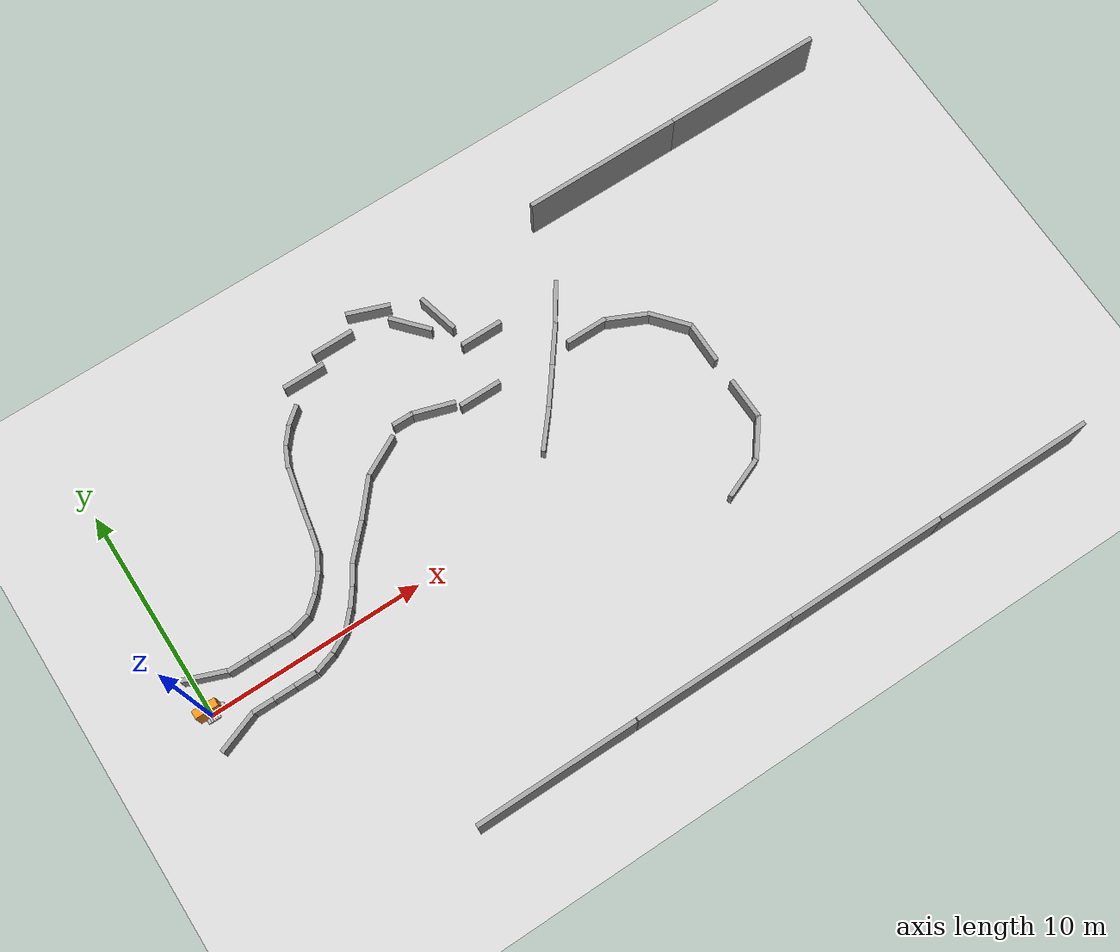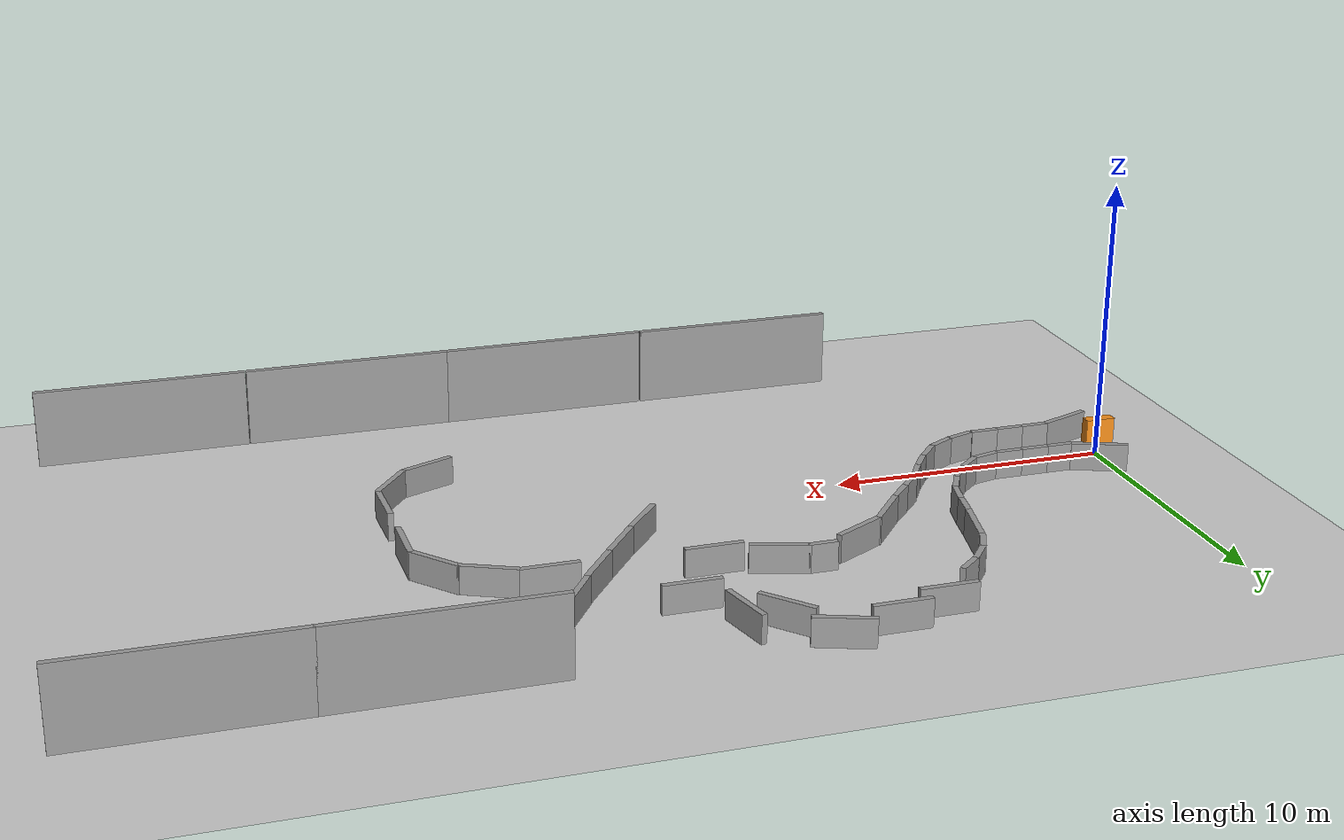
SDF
<sdf version="1.4">
 <world name="default">
  <light name="sun" type="directional">
   <pose>0 0 10 0 -0 0</pose>
   <diffuse>0.8 0.8 0.8 1</diffuse>
   <specular>0.2 0.2 0.2 1</specular>
   <attenuation>
    <range>1000</range>
    <constant>0.9</constant>
    <linear>0.01</linear>
    <quadratic>0.001</quadratic>
   </attenuation>
   <direction>-0.5 0.1 -0.9</direction>
  </light>
  <model name="ground_plane">
   <static>1</static>
   <link name="link">
    <collision name="collision">
     <geometry><plane><normal>0 0 1</normal><size>100 100</size></plane></geometry>
     <surface><friction><ode><mu>100</mu><mu2>50</mu2></ode></friction></surface>
    </collision>
    <visual name="visual">
     <cast_shadows>0</cast_shadows>
     <geometry><plane><normal>0 0 1</normal><size>100 100</size></plane></geometry>
     <material>
      <script><uri>file://media/materials/scripts/gazebo.material</uri><name>Gazebo/Grey</name></script>
     </material>
    </visual>
    <velocity_decay><linear>0</linear><angular>0</angular></velocity_decay>
   </link>
  </model>
  <physics type="ode">
   <max_step_size>0.001</max_step_size>
   <real_time_factor>1</real_time_factor>
   <real_time_update_rate>1000</real_time_update_rate>
   <gravity>0 0 -9.8</gravity>
  </physics>
  <scene><ambient>0.4 0.4 0.4 1</ambient><background>0.7 0.7 0.7 1</background><shadows>1</shadows></scene>
  <spherical_coordinates>
   <surface_model>EARTH_WGS84</surface_model>
   <latitude_deg>0</latitude_deg>
   <longitude_deg>0</longitude_deg>
   <elevation>0</elevation>
   <heading_deg>0</heading_deg>
  </spherical_coordinates>
  <model name="grey_wall">
   <static>1</static>
   <link name="link">
    <pose>0 0 0.5 0 -0 0</pose>
    <collision name="collision"><geometry><box><size>1 0.2 1</size></box></geometry></collision>
    <visual name="visual">
     <cast_shadows>0</cast_shadows>
     <geometry><box><size>1 0.2 1</size></box></geometry>
     <material>
      <script>
       <uri>model://grey_wall/materials/scripts</uri>
       <uri>model://grey_wall/materials/textures</uri>
       <name>vrc/grey_wall</name>
      </script>
     </material>
    </visual>
    <velocity_decay><linear>0</linear><angular>0</angular></velocity_decay>
   </link>
   <pose>2 1 0 0 -0 0</pose>
  </model>
  <model name="grey_wall_1">
   <static>1</static>
   <link name="link">
    <pose>0 0 0.5 0 -0 0</pose>
    <collision name="collision"><geometry><box><size>1 0.2 1</size></box></geometry></collision>
    <visual name="visual">
     <cast_shadows>0</cast_shadows>
     <geometry><box><size>1 0.2 1</size></box></geometry>
     <material>
      <script>
       <uri>model://grey_wall/materials/scripts</uri>
       <uri>model://grey_wall/materials/textures</uri>
       <name>vrc/grey_wall</name>
      </script>
     </material>
    </visual>
    <velocity_decay><linear>0</linear><angular>0</angular></velocity_decay>
   </link>
   <pose>2 -1 0 0 -0 0</pose>
  </model>
  <model name="grey_wall_2">
   <static>1</static>
   <link name="link">
    <pose>0 0 0.5 0 -0 0</pose>
    <collision name="collision"><geometry><box><size>1 0.2 1</size></box></geometry></collision>
    <visual name="visual">
     <cast_shadows>0</cast_shadows>
     <geometry><box><size>1 0.2 1</size></box></geometry>
     <material>
      <script>
       <uri>model://grey_wall/materials/scripts</uri>
       <uri>model://grey_wall/materials/textures</uri>
       <name>vrc/grey_wall</name>
      </script>
     </material>
    </visual>
    <velocity_decay><linear>0</linear><angular>0</angular></velocity_decay>
   </link>
   <pose>3 -1 0 0 -0 0</pose>
  </model>
  <model name="grey_wall_3">
   <static>1</static>
   <link name="link">
    <pose>0 0 0.5 0 -0 0</pose>
    <collision name="collision"><geometry><box><size>1 0.2 1</size></box></geometry></collision>
    <visual name="visual">
     <cast_shadows>0</cast_shadows>
     <geometry><box><size>1 0.2 1</size></box></geometry>
     <material>
      <script>
       <uri>model://grey_wall/materials/scripts</uri>
       <uri>model://grey_wall/materials/textures</uri>
       <name>vrc/grey_wall</name>
      </script>
     </material>
    </visual>
    <velocity_decay><linear>0</linear><angular>0</angular></velocity_decay>
   </link>
   <pose>3 1 0 0 -0 0</pose>
  </model>
  <model name="grey_wall_4">
   <static>1</static>
   <link name="link">
    <pose>0 0 0.5 0 -0 0</pose>
    <collision name="collision"><geometry><box><size>1 0.2 1</size></box></geometry></collision>
    <visual name="visual">
     <cast_shadows>0</cast_shadows>
     <geometry><box><size>1 0.2 1</size></box></geometry>
     <material>
      <script>
       <uri>model://grey_wall/materials/scripts</uri>
       <uri>model://grey_wall/materials/textures</uri>
       <name>vrc/grey_wall</name>
      </script>
     </material>
    </visual>
    <velocity_decay><linear>0</linear><angular>0</angular></velocity_decay>
   </link>
   <pose>4 -1 0 0 -0 0</pose>
  </model>
  <model name="grey_wall_5">
   <static>1</static>
   <link name="link">
    <pose>0 0 0.5 0 -0 0</pose>
    <collision name="collision"><geometry><box><size>1 0.2 1</size></box></geometry></collision>
    <visual name="visual">
     <cast_shadows>0</cast_shadows>
     <geometry><box><size>1 0.2 1</size></box></geometry>
     <material>
      <script>
       <uri>model://grey_wall/materials/scripts</uri>
       <uri>model://grey_wall/materials/textures</uri>
       <name>vrc/grey_wall</name>
      </script>
     </material>
    </visual>
    <velocity_decay><linear>0</linear><angular>0</angular></velocity_decay>
   </link>
   <pose>4 1 0 0 -0 0</pose>
  </model>
  <model name="grey_wall_6">
   <static>1</static>
   <link name="link">
    <pose>0 0 0.5 0 -0 0</pose>
    <collision name="collision"><geometry><box><size>1 0.2 1</size></box></geometry></collision>
    <visual name="visual">
     <cast_shadows>0</cast_shadows>
     <geometry><box><size>1 0.2 1</size></box></geometry>
     <material>
      <script>
       <uri>model://grey_wall/materials/scripts</uri>
       <uri>model://grey_wall/materials/textures</uri>
       <name>vrc/grey_wall</name>
      </script>
     </material>
    </visual>
    <velocity_decay><linear>0</linear><angular>0</angular></velocity_decay>
   </link>
   <pose>5.01734 -0.848768 0 0 -0 0.314202</pose>
  </model>
  <model name="grey_wall_7">
   <static>1</static>
   <link name="link">
    <pose>0 0 0.5 0 -0 0</pose>
    <collision name="collision"><geometry><box><size>1 0.2 1</size></box></geometry></collision>
    <visual name="visual">
     <cast_shadows>0</cast_shadows>
     <geometry><box><size>1 0.2 1</size></box></geometry>
     <material>
      <script>
       <uri>model://grey_wall/materials/scripts</uri>
       <uri>model://grey_wall/materials/textures</uri>
       <name>vrc/grey_wall</name>
      </script>
     </material>
    </visual>
    <velocity_decay><linear>0</linear><angular>0</angular></velocity_decay>
   </link>
   <pose>4.95446 1.11053 0 0 -0 0.247876</pose>
  </model>
  <model name="grey_wall_8">
   <static>1</static>
   <link name="link">
    <pose>0 0 0.5 0 -0 0</pose>
    <collision name="collision"><geometry><box><size>1 0.2 1</size></box></geometry></collision>
    <visual name="visual">
     <cast_shadows>0</cast_shadows>
     <geometry><box><size>1 0.2 1</size></box></geometry>
     <material>
      <script>
       <uri>model://grey_wall/materials/scripts</uri>
       <uri>model://grey_wall/materials/textures</uri>
       <name>vrc/grey_wall</name>
      </script>
     </material>
    </visual>
    <velocity_decay><linear>0</linear><angular>0</angular></velocity_decay>
   </link>
   <pose>5.94371 -0.455026 0 0 -0 0.490034</pose>
  </model>
  <model name="grey_wall_9">
   <static>1</static>
   <link name="link">
    <pose>0 0 0.5 0 -0 0</pose>
    <collision name="collision"><geometry><box><size>1 0.2 1</size></box></geometry></collision>
    <visual name="visual">
     <cast_shadows>0</cast_shadows>
     <geometry><box><size>1 0.2 1</size></box></geometry>
     <material>
      <script>
       <uri>model://grey_wall/materials/scripts</uri>
       <uri>model://grey_wall/materials/textures</uri>
       <name>vrc/grey_wall</name>
      </script>
     </material>
    </visual>
    <velocity_decay><linear>0</linear><angular>0</angular></velocity_decay>
   </link>
   <pose>5.78683 1.528 0 0 -0 0.704091</pose>
  </model>
  <model name="grey_wall_10">
   <static>1</static>
   <link name="link">
    <pose>0 0 0.5 0 -0 0</pose>
    <collision name="collision"><geometry><box><size>1 0.2 1</size></box></geometry></collision>
    <visual name="visual">
     <cast_shadows>0</cast_shadows>
     <geometry><box><size>1 0.2 1</size></box></geometry>
     <material>
      <script>
       <uri>model://grey_wall/materials/scripts</uri>
       <uri>model://grey_wall/materials/textures</uri>
       <name>vrc/grey_wall</name>
      </script>
     </material>
    </visual>
    <velocity_decay><linear>0</linear><angular>0</angular></velocity_decay>
   </link>
   <pose>6.71659 0.147546 0 0 -0 0.835488</pose>
  </model>
  <model name="grey_wall_11">
   <static>1</static>
   <link name="link">
    <pose>0 0 0.5 0 -0 0</pose>
    <collision name="collision"><geometry><box><size>1 0.2 1</size></box></geometry></collision>
    <visual name="visual">
     <cast_shadows>0</cast_shadows>
     <geometry><box><size>1 0.2 1</size></box></geometry>
     <material>
      <script>
       <uri>model://grey_wall/materials/scripts</uri>
       <uri>model://grey_wall/materials/textures</uri>
       <name>vrc/grey_wall</name>
      </script>
     </material>
    </visual>
    <velocity_decay><linear>0</linear><angular>0</angular></velocity_decay>
   </link>
   <pose>6.44136 2.2078 0 0 -0 0.880043</pose>
  </model>
  <model name="grey_wall_0">
   <static>1</static>
   <link name="link">
    <pose>0 0 0.5 0 -0 0</pose>
    <collision name="collision"><geometry><box><size>1 0.2 1</size></box></geometry></collision>
    <visual name="visual">
     <cast_shadows>0</cast_shadows>
     <geometry><box><size>1 0.2 1</size></box></geometry>
     <material>
      <script>
       <uri>model://grey_wall/materials/scripts</uri>
       <uri>model://grey_wall/materials/textures</uri>
       <name>vrc/grey_wall</name>
      </script>
     </material>
    </visual>
    <velocity_decay><linear>0</linear><angular>0</angular></velocity_decay>
   </link>
   <pose>7.33347 0.891377 0 0 -0 0.944963</pose>
  </model>
  <model name="grey_wall_12">
   <static>1</static>
   <link name="link">
    <pose>0 0 0.5 0 -0 0</pose>
    <collision name="collision"><geometry><box><size>1 0.2 1</size></box></geometry></collision>
    <visual name="visual">
     <cast_shadows>0</cast_shadows>
     <geometry><box><size>1 0.2 1</size></box></geometry>
     <material>
      <script>
       <uri>model://grey_wall/materials/scripts</uri>
       <uri>model://grey_wall/materials/textures</uri>
       <name>vrc/grey_wall</name>
      </script>
     </material>
    </visual>
    <velocity_decay><linear>0</linear><angular>0</angular></velocity_decay>
   </link>
   <pose>6.93852 2.95464 0 0 -0 1.07819</pose>
  </model>
  <model name="grey_wall_13">
   <static>1</static>
   <link name="link">
    <pose>0 0 0.5 0 -0 0</pose>
    <collision name="collision"><geometry><box><size>1 0.2 1</size></box></geometry></collision>
    <visual name="visual">
     <cast_shadows>0</cast_shadows>
     <geometry><box><size>1 0.2 1</size></box></geometry>
     <material>
      <script>
       <uri>model://grey_wall/materials/scripts</uri>
       <uri>model://grey_wall/materials/textures</uri>
       <name>vrc/grey_wall</name>
      </script>
     </material>
    </visual>
    <velocity_decay><linear>0</linear><angular>0</angular></velocity_decay>
   </link>
   <pose>7.86044 1.67629 0 0 -0 1.01143</pose>
  </model>
  <model name="grey_wall_14">
   <static>1</static>
   <link name="link">
    <pose>0 0 0.5 0 -0 0</pose>
    <collision name="collision"><geometry><box><size>1 0.2 1</size></box></geometry></collision>
    <visual name="visual">
     <cast_shadows>0</cast_shadows>
     <geometry><box><size>1 0.2 1</size></box></geometry>
     <material>
      <script>
       <uri>model://grey_wall/materials/scripts</uri>
       <uri>model://grey_wall/materials/textures</uri>
       <name>vrc/grey_wall</name>
      </script>
     </material>
    </visual>
    <velocity_decay><linear>0</linear><angular>0</angular></velocity_decay>
   </link>
   <pose>8.43573 2.44586 0 0 -0 0.825692</pose>
  </model>
  <model name="grey_wall_15">
   <static>1</static>
   <link name="link">
    <pose>0 0 0.5 0 -0 0</pose>
    <collision name="collision"><geometry><box><size>1 0.2 1</size></box></geometry></collision>
    <visual name="visual">
     <cast_shadows>0</cast_shadows>
     <geometry><box><size>1 0.2 1</size></box></geometry>
     <material>
      <script>
       <uri>model://grey_wall/materials/scripts</uri>
       <uri>model://grey_wall/materials/textures</uri>
       <name>vrc/grey_wall</name>
      </script>
     </material>
    </visual>
    <velocity_decay><linear>0</linear><angular>0</angular></velocity_decay>
   </link>
   <pose>7.287 3.81575 0 0 -0 1.34265</pose>
  </model>
  <model name="grey_wall_16">
   <static>1</static>
   <link name="link">
    <pose>0 0 0.5 0 -0 0</pose>
    <collision name="collision"><geometry><box><size>1 0.2 1</size></box></geometry></collision>
    <visual name="visual">
     <cast_shadows>0</cast_shadows>
     <geometry><box><size>1 0.2 1</size></box></geometry>
     <material>
      <script>
       <uri>model://grey_wall/materials/scripts</uri>
       <uri>model://grey_wall/materials/textures</uri>
       <name>vrc/grey_wall</name>
      </script>
     </material>
    </visual>
    <velocity_decay><linear>0</linear><angular>0</angular></velocity_decay>
   </link>
   <pose>9.09227 3.15251 0 0 -0 0.813159</pose>
  </model>
  <model name="grey_wall_17">
   <static>1</static>
   <link name="link">
    <pose>0 0 0.5 0 -0 0</pose>
    <collision name="collision"><geometry><box><size>1 0.2 1</size></box></geometry></collision>
    <visual name="visual">
     <cast_shadows>0</cast_shadows>
     <geometry><box><size>1 0.2 1</size></box></geometry>
     <material>
      <script>
       <uri>model://grey_wall/materials/scripts</uri>
       <uri>model://grey_wall/materials/textures</uri>
       <name>vrc/grey_wall</name>
      </script>
     </material>
    </visual>
    <velocity_decay><linear>0</linear><angular>0</angular></velocity_decay>
   </link>
   <pose>7.48265 4.75193 0 0 -0 1.38405</pose>
  </model>
  <model name="grey_wall_18">
   <static>1</static>
   <link name="link">
    <pose>0 0 0.5 0 -0 0</pose>
    <collision name="collision"><geometry><box><size>1 0.2 1</size></box></geometry></collision>
    <visual name="visual">
     <cast_shadows>0</cast_shadows>
     <geometry><box><size>2 0.2 1</size></box></geometry>
     <material>
      <script>
       <uri>model://grey_wall/materials/scripts</uri>
       <uri>model://grey_wall/materials/textures</uri>
       <name>vrc/grey_wall</name>
      </script>
     </material>
    </visual>
    <velocity_decay><linear>0</linear><angular>0</angular></velocity_decay>
   </link>
   <pose>10.0402 4.23818 0 0 -0 0.873095</pose>
  </model>
  <model name="grey_wall_19">
   <static>1</static>
   <link name="link">
    <pose>0 0 0.5 0 -0 0</pose>
    <collision name="collision"><geometry><box><size>1 0.2 1</size></box></geometry></collision>
    <visual name="visual">
     <cast_shadows>0</cast_shadows>
     <geometry><box><size>2 0.2 1</size></box></geometry>
     <material>
      <script>
       <uri>model://grey_wall/materials/scripts</uri>
       <uri>model://grey_wall/materials/textures</uri>
       <name>vrc/grey_wall</name>
      </script>
     </material>
    </visual>
    <velocity_decay><linear>0</linear><angular>0</angular></velocity_decay>
   </link>
   <pose>7.78888 6.19975 0 0 -0 1.3546</pose>
  </model>
  <model name="grey_wall_20">
   <static>1</static>
   <link name="link">
    <pose>0 0 0.5 0 -0 0</pose>
    <collision name="collision"><geometry><box><size>1 0.2 1</size></box></geometry></collision>
    <visual name="visual">
     <cast_shadows>0</cast_shadows>
     <geometry><box><size>1 0.2 1</size></box></geometry>
     <material>
      <script>
       <uri>model://grey_wall/materials/scripts</uri>
       <uri>model://grey_wall/materials/textures</uri>
       <name>vrc/grey_wall</name>
      </script>
     </material>
    </visual>
    <velocity_decay><linear>0</linear><angular>0</angular></velocity_decay>
   </link>
   <pose>8.17724 7.60588 0 0 -0 1.15349</pose>
  </model>
  <model name="grey_wall_21">
   <static>1</static>
   <link name="link">
    <pose>0 0 0.5 0 -0 0</pose>
    <collision name="collision"><geometry><box><size>1 0.2 1</size></box></geometry></collision>
    <visual name="visual">
     <cast_shadows>0</cast_shadows>
     <geometry><box><size>1 0.2 1</size></box></geometry>
     <material>
      <script>
       <uri>model://grey_wall/materials/scripts</uri>
       <uri>model://grey_wall/materials/textures</uri>
       <name>vrc/grey_wall</name>
      </script>
     </material>
    </visual>
    <velocity_decay><linear>0</linear><angular>0</angular></velocity_decay>
   </link>
   <pose>8.66935 8.39932 0 0 -0 0.889007</pose>
  </model>
  <model name="grey_wall_22">
   <static>1</static>
   <link name="link">
    <pose>0 0 0.5 0 -0 0</pose>
    <collision name="collision"><geometry><box><size>1 0.2 1</size></box></geometry></collision>
    <visual name="visual">
     <cast_shadows>0</cast_shadows>
     <geometry><box><size>1 0.2 1</size></box></geometry>
     <material>
      <script>
       <uri>model://grey_wall/materials/scripts</uri>
       <uri>model://grey_wall/materials/textures</uri>
       <name>vrc/grey_wall</name>
      </script>
     </material>
    </visual>
    <velocity_decay><linear>0</linear><angular>0</angular></velocity_decay>
   </link>
   <pose>9.33151 9.06855 0 0 -0 0.690595</pose>
  </model>
  <model name="grey_wall_23">
   <static>1</static>
   <link name="link">
    <pose>0 0 0.5 0 -0 0</pose>
    <collision name="collision"><geometry><box><size>1 0.2 1</size></box></geometry></collision>
    <visual name="visual">
     <cast_shadows>0</cast_shadows>
     <geometry><box><size>2 0.2 1</size></box></geometry>
     <material>
      <script>
       <uri>model://grey_wall/materials/scripts</uri>
       <uri>model://grey_wall/materials/textures</uri>
       <name>vrc/grey_wall</name>
      </script>
     </material>
    </visual>
    <velocity_decay><linear>0</linear><angular>0</angular></velocity_decay>
   </link>
   <pose>10.6199 10.3484 0 0 -0 0</pose>
  </model>
  <model name="grey_wall_24">
   <static>1</static>
   <link name="link">
    <pose>0 0 0.5 0 -0 0</pose>
    <collision name="collision"><geometry><box><size>1 0.2 1</size></box></geometry></collision>
    <visual name="visual">
     <cast_shadows>0</cast_shadows>
     <geometry><box><size>2 0.2 1</size></box></geometry>
     <material>
      <script>
       <uri>model://grey_wall/materials/scripts</uri>
       <uri>model://grey_wall/materials/textures</uri>
       <name>vrc/grey_wall</name>
      </script>
     </material>
    </visual>
    <velocity_decay><linear>0</linear><angular>0</angular></velocity_decay>
   </link>
   <pose>11.5812 5.46661 0 0 -0 0.49252</pose>
  </model>
  <model name="grey_wall_25">
   <static>1</static>
   <link name="link">
    <pose>0 0 0.5 0 -0 0</pose>
    <collision name="collision"><geometry><box><size>1 0.2 1</size></box></geometry></collision>
    <visual name="visual">
     <cast_shadows>0</cast_shadows>
     <geometry><box><size>1 0.2 1</size></box></geometry>
     <material>
      <script>
       <uri>model://grey_wall/materials/scripts</uri>
       <uri>model://grey_wall/materials/textures</uri>
       <name>vrc/grey_wall</name>
      </script>
     </material>
    </visual>
    <velocity_decay><linear>0</linear><angular>0</angular></velocity_decay>
   </link>
   <pose>13.1708 6.3273 0 0 -0 0</pose>
  </model>
  <model name="grey_wall_26">
   <static>1</static>
   <link name="link">
    <pose>0 0 0.5 0 -0 0</pose>
    <collision name="collision"><geometry><box><size>1 0.2 1</size></box></geometry></collision>
    <visual name="visual">
     <cast_shadows>0</cast_shadows>
     <geometry><box><size>2 0.2 1</size></box></geometry>
     <material>
      <script>
       <uri>model://grey_wall/materials/scripts</uri>
       <uri>model://grey_wall/materials/textures</uri>
       <name>vrc/grey_wall</name>
      </script>
     </material>
    </visual>
    <velocity_decay><linear>0</linear><angular>0</angular></velocity_decay>
   </link>
   <pose>12.4497 10.9908 0 0 -0 0</pose>
  </model>
  <model name="grey_wall_27">
   <static>1</static>
   <link name="link">
    <pose>0 0 0.5 0 -0 0</pose>
    <collision name="collision"><geometry><box><size>1 0.2 1</size></box></geometry></collision>
    <visual name="visual">
     <cast_shadows>0</cast_shadows>
     <geometry><box><size>2 0.2 1</size></box></geometry>
     <material>
      <script>
       <uri>model://grey_wall/materials/scripts</uri>
       <uri>model://grey_wall/materials/textures</uri>
       <name>vrc/grey_wall</name>
      </script>
     </material>
    </visual>
    <velocity_decay><linear>0</linear><angular>0</angular></velocity_decay>
   </link>
   <pose>14.5385 6.04554 0 0 0 -0.303836</pose>
  </model>
  <model name="grey_wall_28">
   <static>1</static>
   <link name="link">
    <pose>0 0 0.5 0 -0 0</pose>
    <collision name="collision"><geometry><box><size>1 0.2 1</size></box></geometry></collision>
    <visual name="visual">
     <cast_shadows>0</cast_shadows>
     <geometry><box><size>2 0.2 1</size></box></geometry>
     <material>
      <script>
       <uri>model://grey_wall/materials/scripts</uri>
       <uri>model://grey_wall/materials/textures</uri>
       <name>vrc/grey_wall</name>
      </script>
     </material>
    </visual>
    <velocity_decay><linear>0</linear><angular>0</angular></velocity_decay>
   </link>
   <pose>14.5414 11.4592 0 0 0 -0.354403</pose>
  </model>
  <model name="grey_wall_29">
   <static>1</static>
   <link name="link">
    <pose>0 0 0.5 0 -0 0</pose>
    <collision name="collision"><geometry><box><size>1 0.2 1</size></box></geometry></collision>
    <visual name="visual">
     <cast_shadows>0</cast_shadows>
     <geometry><box><size>2 0.2 1</size></box></geometry>
     <material>
      <script>
       <uri>model://grey_wall/materials/scripts</uri>
       <uri>model://grey_wall/materials/textures</uri>
       <name>vrc/grey_wall</name>
      </script>
     </material>
    </visual>
    <velocity_decay><linear>0</linear><angular>0</angular></velocity_decay>
   </link>
   <pose>15.7503 9.87719 0 0 0 -0.848354</pose>
  </model>
  <model name="grey_wall_30">
   <static>1</static>
   <link name="link">
    <pose>0 0 0.5 0 -0 0</pose>
    <collision name="collision"><geometry><box><size>1 0.2 1</size></box></geometry></collision>
    <visual name="visual">
     <cast_shadows>0</cast_shadows>
     <geometry><box><size>2 0.2 1</size></box></geometry>
     <material>
      <script>
       <uri>model://grey_wall/materials/scripts</uri>
       <uri>model://grey_wall/materials/textures</uri>
       <name>vrc/grey_wall</name>
      </script>
     </material>
    </visual>
    <velocity_decay><linear>0</linear><angular>0</angular></velocity_decay>
   </link>
   <pose>16.5755 5.49853 0 0 -0 0</pose>
  </model>
  <model name="grey_wall_31">
   <static>1</static>
   <link name="link">
    <pose>0 0 0.5 0 -0 0</pose>
    <collision name="collision"><geometry><box><size>1 0.2 1</size></box></geometry></collision>
    <visual name="visual">
     <cast_shadows>0</cast_shadows>
     <geometry><box><size>2 0.2 1</size></box></geometry>
     <material>
      <script>
       <uri>model://grey_wall/materials/scripts</uri>
       <uri>model://grey_wall/materials/textures</uri>
       <name>vrc/grey_wall</name>
      </script>
     </material>
    </visual>
    <velocity_decay><linear>0</linear><angular>0</angular></velocity_decay>
   </link>
   <pose>19.2936 4.11796 0 0 -0 0.912425</pose>
  </model>
  <model name="grey_wall_32">
   <static>1</static>
   <link name="link">
    <pose>0 0 0.5 0 -0 0</pose>
    <collision name="collision"><geometry><box><size>1 0.2 1</size></box></geometry></collision>
    <visual name="visual">
     <cast_shadows>0</cast_shadows>
     <geometry><box><size>2 0.2 1</size></box></geometry>
     <material>
      <script>
       <uri>model://grey_wall/materials/scripts</uri>
       <uri>model://grey_wall/materials/textures</uri>
       <name>vrc/grey_wall</name>
      </script>
     </material>
    </visual>
    <velocity_decay><linear>0</linear><angular>0</angular></velocity_decay>
   </link>
   <pose>20.4843 5.68639 0 0 -0 0.922661</pose>
  </model>
  <model name="grey_wall_33">
   <static>1</static>
   <link name="link">
    <pose>0 0 0.5 0 -0 0</pose>
    <collision name="collision"><geometry><box><size>1 0.2 1</size></box></geometry></collision>
    <visual name="visual">
     <cast_shadows>0</cast_shadows>
     <geometry><box><size>2 0.2 1</size></box></geometry>
     <material>
      <script>
       <uri>model://grey_wall/materials/scripts</uri>
       <uri>model://grey_wall/materials/textures</uri>
       <name>vrc/grey_wall</name>
      </script>
     </material>
    </visual>
    <velocity_decay><linear>0</linear><angular>0</angular></velocity_decay>
   </link>
   <pose>21.5995 7.27009 0 0 -0 0.970852</pose>
  </model>
  <model name="grey_wall_34">
   <static>1</static>
   <link name="link">
    <pose>0 0 0.5 0 -0 0</pose>
    <collision name="collision"><geometry><box><size>1 0.2 1</size></box></geometry></collision>
    <visual name="visual">
     <cast_shadows>0</cast_shadows>
     <geometry><box><size>2 0.2 1</size></box></geometry>
     <material>
      <script>
       <uri>model://grey_wall/materials/scripts</uri>
       <uri>model://grey_wall/materials/textures</uri>
       <name>vrc/grey_wall</name>
      </script>
     </material>
    </visual>
    <velocity_decay><linear>0</linear><angular>0</angular></velocity_decay>
   </link>
   <pose>18.0731 2.5895 0 0 -0 0.874712</pose>
  </model>
  <model name="grey_wall_35">
   <static>1</static>
   <link name="link">
    <pose>0 0 0.5 0 -0 0</pose>
    <collision name="collision"><geometry><box><size>1 0.2 1</size></box></geometry></collision>
    <visual name="visual">
     <cast_shadows>0</cast_shadows>
     <geometry><box><size>2 0.2 1</size></box></geometry>
     <material>
      <script>
       <uri>model://grey_wall/materials/scripts</uri>
       <uri>model://grey_wall/materials/textures</uri>
       <name>vrc/grey_wall</name>
      </script>
     </material>
    </visual>
    <velocity_decay><linear>0</linear><angular>0</angular></velocity_decay>
   </link>
   <pose>0.60257 -1.35496 0 0 -0 0.359717</pose>
  </model>
  <model name="grey_wall_36">
   <static>1</static>
   <link name="link">
    <pose>0 0 0.5 0 -0 0</pose>
    <collision name="collision"><geometry><box><size>1 0.2 1</size></box></geometry></collision>
    <visual name="visual">
     <cast_shadows>0</cast_shadows>
     <geometry><box><size>2 0.2 1</size></box></geometry>
     <material>
      <script>
       <uri>model://grey_wall/materials/scripts</uri>
       <uri>model://grey_wall/materials/textures</uri>
       <name>vrc/grey_wall</name>
      </script>
     </material>
    </visual>
    <velocity_decay><linear>0</linear><angular>0</angular></velocity_decay>
   </link>
   <pose>0.630631 1.37727 0 0 0 -0.366318</pose>
  </model>
  <model name="grey_wall_38">
   <static>1</static>
   <link name="link">
    <pose>0 0 0.5 0 -0 0</pose>
    <collision name="collision"><geometry><box><size>1 0.2 1</size></box></geometry></collision>
    <visual name="visual">
     <cast_shadows>0</cast_shadows>
     <geometry><box><size>2 0.2 1</size></box></geometry>
     <material>
      <script>
       <uri>model://grey_wall/materials/scripts</uri>
       <uri>model://grey_wall/materials/textures</uri>
       <name>vrc/grey_wall</name>
      </script>
     </material>
    </visual>
    <velocity_decay><linear>0</linear><angular>0</angular></velocity_decay>
   </link>
   <pose>17.0066 9.64562 0 0 0 -1.33172</pose>
  </model>
  <model name="grey_wall_39">
   <static>1</static>
   <link name="link">
    <pose>0 0 0.5 0 -0 0</pose>
    <collision name="collision"><geometry><box><size>1 0.2 1</size></box></geometry></collision>
    <visual name="visual">
     <cast_shadows>0</cast_shadows>
     <geometry><box><size>2 0.2 1</size></box></geometry>
     <material>
      <script>
       <uri>model://grey_wall/materials/scripts</uri>
       <uri>model://grey_wall/materials/textures</uri>
       <name>vrc/grey_wall</name>
      </script>
     </material>
    </visual>
    <velocity_decay><linear>0</linear><angular>0</angular></velocity_decay>
   </link>
   <pose>18.099 7.81182 0 0 -0 0</pose>
  </model>
  <model name="grey_wall_40">
   <static>1</static>
   <link name="link">
    <pose>0 0 0.5 0 -0 0</pose>
    <collision name="collision"><geometry><box><size>1 0.2 1</size></box></geometry></collision>
    <visual name="visual">
     <cast_shadows>0</cast_shadows>
     <geometry><box><size>2 0.2 1</size></box></geometry>
     <material>
      <script>
       <uri>model://grey_wall/materials/scripts</uri>
       <uri>model://grey_wall/materials/textures</uri>
       <name>vrc/grey_wall</name>
      </script>
     </material>
    </visual>
    <velocity_decay><linear>0</linear><angular>0</angular></velocity_decay>
   </link>
   <pose>25.9545 2.16272 0 0 0 -1.57042</pose>
  </model>
  <model name="grey_wall_42">
   <static>1</static>
   <link name="link">
    <pose>0 0 0.5 0 -0 0</pose>
    <collision name="collision"><geometry><box><size>1 0.2 1</size></box></geometry></collision>
    <visual name="visual">
     <cast_shadows>0</cast_shadows>
     <geometry><box><size>2 0.2 1</size></box></geometry>
     <material>
      <script>
       <uri>model://grey_wall/materials/scripts</uri>
       <uri>model://grey_wall/materials/textures</uri>
       <name>vrc/grey_wall</name>
      </script>
     </material>
    </visual>
    <velocity_decay><linear>0</linear><angular>0</angular></velocity_decay>
   </link>
   <pose>25.9879 -0.963035 0 0 0 -1.55255</pose>
  </model>
  <model name="grey_wall_37">
   <static>1</static>
   <link name="link">
    <pose>0 0 0.5 0 -0 0</pose>
    <collision name="collision"><geometry><box><size>1 0.2 1</size></box></geometry></collision>
    <visual name="visual">
     <cast_shadows>0</cast_shadows>
     <geometry><box><size>2 0.2 1</size></box></geometry>
     <material>
      <script>
       <uri>model://grey_wall/materials/scripts</uri>
       <uri>model://grey_wall/materials/textures</uri>
       <name>vrc/grey_wall</name>
      </script>
     </material>
    </visual>
    <velocity_decay><linear>0</linear><angular>0</angular></velocity_decay>
   </link>
   <pose>25.4124 -2.68024 0 0 -0 0.912769</pose>
  </model>
  <model name="grey_wall_41">
   <static>1</static>
   <link name="link">
    <pose>0 0 0.5 0 -0 0</pose>
    <collision name="collision"><geometry><box><size>1 0.2 1</size></box></geometry></collision>
    <visual name="visual">
     <cast_shadows>0</cast_shadows>
     <geometry><box><size>2 0.2 1</size></box></geometry>
     <material>
      <script>
       <uri>model://grey_wall/materials/scripts</uri>
       <uri>model://grey_wall/materials/textures</uri>
       <name>vrc/grey_wall</name>
      </script>
     </material>
    </visual>
    <velocity_decay><linear>0</linear><angular>0</angular></velocity_decay>
   </link>
   <pose>25.3212 3.84477 0 0 0 -0.868141</pose>
  </model>
  <model name="grey_wall_43">
   <static>1</static>
   <link name="link">
    <pose>0 0 0.5 0 -0 0</pose>
    <collision name="collision"><geometry><box><size>1 0.2 1</size></box></geometry></collision>
    <visual name="visual">
     <cast_shadows>0</cast_shadows>
     <geometry><box><size>2 0.2 1</size></box></geometry>
     <material>
      <script>
       <uri>model://grey_wall/materials/scripts</uri>
       <uri>model://grey_wall/materials/textures</uri>
       <name>vrc/grey_wall</name>
      </script>
     </material>
    </visual>
    <velocity_decay><linear>0</linear><angular>0</angular></velocity_decay>
   </link>
   <pose>23.8485 4.96119 0 0 0 -0.439275</pose>
  </model>
  <model name="grey_wall_44">
   <static>1</static>
   <link name="link">
    <pose>0 0 0.5 0 -0 0</pose>
    <collision name="collision"><geometry><box><size>1 0.2 1</size></box></geometry></collision>
    <visual name="visual">
     <cast_shadows>0</cast_shadows>
     <geometry><box><size>2 0.2 1</size></box></geometry>
     <material>
      <script>
       <uri>model://grey_wall/materials/scripts</uri>
       <uri>model://grey_wall/materials/textures</uri>
       <name>vrc/grey_wall</name>
      </script>
     </material>
    </visual>
    <velocity_decay><linear>0</linear><angular>0</angular></velocity_decay>
   </link>
   <pose>23.8942 -3.81304 0 0 -0 0.384523</pose>
  </model>
  <model name="grey_wall_45">
   <static>1</static>
   <link name="link">
    <pose>0 0 1.4 0 -0 0</pose>
    <collision name="collision"><geometry><box><size>7.5 0.2 2.8</size></box></geometry></collision>
    <visual name="visual">
     <cast_shadows>0</cast_shadows>
     <geometry><box><size>7.5 0.2 2.8</size></box></geometry>
     <material>
      <script>
       <uri>model://grey_wall/materials/scripts</uri>
       <uri>model://grey_wall/materials/textures</uri>
       <name>vrc/grey_wall</name>
      </script>
     </material>
    </visual>
    <velocity_decay><linear>0</linear><angular>0</angular></velocity_decay>
   </link>
   <pose>10.4515 -10 0 0 -0 0</pose>
  </model>
  <model name="grey_wall_46">
   <static>1</static>
   <link name="link">
    <pose>0 0 1.4 0 -0 0</pose>
    <collision name="collision"><geometry><box><size>7.5 0.2 2.8</size></box></geometry></collision>
    <visual name="visual">
     <cast_shadows>0</cast_shadows>
     <geometry><box><size>7.5 0.2 2.8</size></box></geometry>
     <material>
      <script>
       <uri>model://grey_wall/materials/scripts</uri>
       <uri>model://grey_wall/materials/textures</uri>
       <name>vrc/grey_wall</name>
      </script>
     </material>
    </visual>
    <velocity_decay><linear>0</linear><angular>0</angular></velocity_decay>
   </link>
   <pose>18 -10 0 0 -0 0</pose>
  </model>
  <model name="grey_wall_47">
   <static>1</static>
   <link name="link">
    <pose>0 0 1.4 0 -0 0</pose>
    <collision name="collision"><geometry><box><size>7.5 0.2 2.8</size></box></geometry></collision>
    <visual name="visual">
     <cast_shadows>0</cast_shadows>
     <geometry><box><size>7.5 0.2 2.8</size></box></geometry>
     <material>
      <script>
       <uri>model://grey_wall/materials/scripts</uri>
       <uri>model://grey_wall/materials/textures</uri>
       <name>vrc/grey_wall</name>
      </script>
     </material>
    </visual>
    <velocity_decay><linear>0</linear><angular>0</angular></velocity_decay>
   </link>
   <pose>25.4597 -10 0 0 -0 0</pose>
  </model>
  <model name="grey_wall_48">
   <static>1</static>
   <link name="link">
    <pose>0 0 1.4 0 -0 0</pose>
    <collision name="collision"><geometry><box><size>7.5 0.2 2.8</size></box></geometry></collision>
    <visual name="visual">
     <cast_shadows>0</cast_shadows>
     <geometry><box><size>7.5 0.2 2.8</size></box></geometry>
     <material>
      <script>
       <uri>model://grey_wall/materials/scripts</uri>
       <uri>model://grey_wall/materials/textures</uri>
       <name>vrc/grey_wall</name>
      </script>
     </material>
    </visual>
    <velocity_decay><linear>0</linear><angular>0</angular></velocity_decay>
   </link>
   <pose>26.5451 11 0 0 -0 0</pose>
  </model>
  <model name="grey_wall_49">
   <static>1</static>
   <link name="link">
    <pose>0 0 1.4 0 -0 0</pose>
    <collision name="collision"><geometry><box><size>7.5 0.2 2.8</size></box></geometry></collision>
    <visual name="visual">
     <cast_shadows>0</cast_shadows>
     <geometry><box><size>7.5 0.2 2.8</size></box></geometry>
     <material>
      <script>
       <uri>model://grey_wall/materials/scripts</uri>
       <uri>model://grey_wall/materials/textures</uri>
       <name>vrc/grey_wall</name>
      </script>
     </material>
    </visual>
    <velocity_decay><linear>0</linear><angular>0</angular></velocity_decay>
   </link>
   <pose>34 11 0 0 -0 0</pose>
  </model>
  <model name="grey_wall_50">
   <static>1</static>
   <link name="link">
    <pose>0 0 1.4 0 -0 0</pose>
    <collision name="collision"><geometry><box><size>7.5 0.2 2.8</size></box></geometry></collision>
    <visual name="visual">
     <cast_shadows>0</cast_shadows>
     <geometry><box><size>7.5 0.2 2.8</size></box></geometry>
     <material>
      <script>
       <uri>model://grey_wall/materials/scripts</uri>
       <uri>model://grey_wall/materials/textures</uri>
       <name>vrc/grey_wall</name>
      </script>
     </material>
    </visual>
    <velocity_decay><linear>0</linear><angular>0</angular></velocity_decay>
   </link>
   <pose>33 -10 0 0 -0 0</pose>
  </model>
  <model name="grey_wall_51">
   <static>1</static>
   <link name="link">
    <pose>0 0 0.5 0 -0 0</pose>
    <collision name="collision"><geometry><box><size>1 0.2 1</size></box></geometry></collision>
    <visual name="visual">
     <cast_shadows>0</cast_shadows>
     <geometry><box><size>2 0.2 1</size></box></geometry>
     <material>
      <script>
       <uri>model://grey_wall/materials/scripts</uri>
       <uri>model://grey_wall/materials/textures</uri>
       <name>vrc/grey_wall</name>
      </script>
     </material>
    </visual>
    <velocity_decay><linear>0</linear><angular>0</angular></velocity_decay>
   </link>
   <pose>22 5.40151 0 0 -0 0</pose>
  </model>
  <model name="robot_description">
   <link name="base_link">
    <inertial>
     <pose>0.0112157 0 0.00304902 0 -0 0</pose>
     <mass>10.2</mass>
     <inertia>
      <ixx>10.0684</ixx>
      <ixy>0</ixy>
      <ixz>-0.0135074</ixz>
      <iyy>10.1328</iyy>
      <iyz>0</iyz>
      <izz>10.0745</izz>
     </inertia>
    </inertial>
    <collision name="base_link_collision">
     <geometry><box><size>1.068 0.368 1.346</size></box></geometry>
    </collision>
    <collision name="base_link_collision_kinect_link">
     <pose>0.534 0 0.673 0 -0 0</pose>
     <geometry><box><size>0.02 0.1 0.02</size></box></geometry>
    </collision>
    <collision name="base_link_collision_lidar_link">
     <pose>0.61 0 -0.362 0 -0 0</pose>
     <geometry><box><size>0.152 0.152 0.152</size></box></geometry>
    </collision>
    <visual name="base_link_visual">
     <geometry><box><size>1.068 0.368 1.346</size></box></geometry>
     <material><script><name>Gazebo/Orange</name><uri>__default__</uri></script></material>
    </visual>
    <visual name="base_link_visual_kinect_link">
     <pose>0.534 0 0.673 0 -0 0</pose>
     <geometry><box><size>0.02 0.1 0.02</size></box></geometry>
    </visual>
    <visual name="base_link_visual_lidar_link">
     <pose>0.61 0 -0.362 0 -0 0</pose>
     <geometry><box><size>0.152 0.152 0.152</size></box></geometry>
    </visual>
    <velocity_decay><linear>0</linear><angular>0</angular></velocity_decay>
    <velocity_decay><linear>0</linear><angular>0</angular></velocity_decay>
    <sensor name="openni_camera_camera" type="depth">
     <always_on>1</always_on>
     <visualize>1</visualize>
     <camera name="__default__">
      <horizontal_fov>2.36</horizontal_fov>
      <image><width>640</width><height>480</height><format>R8G8B8</format></image>
      <depth_camera><output>depths</output></depth_camera>
      <clip><near>0.1</near><far>100</far></clip>
     </camera>
     <plugin name="camera_controller" filename="libgazebo_ros_openni_kinect.so">
      <alwaysOn>true</alwaysOn>
      <updateRate>10.0</updateRate>
      <cameraName>kinect</cameraName>
      <frameName>kinect_depth_frame</frameName>
      <imageTopicName>rgb/image_raw</imageTopicName>
      <depthImageTopicName>depth/image_raw</depthImageTopicName>
      <pointCloudTopicName>depth/points</pointCloudTopicName>
      <cameraInfoTopicName>rgb/camera_info</cameraInfoTopicName>
      <depthImageCameraInfoTopicName>depth/camera_info</depthImageCameraInfoTopicName>
      <pointCloudCutoff>0.4</pointCloudCutoff>
      <hackBaseline>0.07</hackBaseline>
      <distortionK1>0.0</distortionK1>
      <distortionK2>0.0</distortionK2>
      <distortionK3>0.0</distortionK3>
      <distortionT1>0.0</distortionT1>
      <distortionT2>0.0</distortionT2>
      <CxPrime>0.0</CxPrime>
      <Cx>0.0</Cx>
      <Cy>0.0</Cy>
      <focalLength>0.0</focalLength>
      <robotNamespace>/</robotNamespace>
     </plugin>
     <pose>0.534 0 0.673 0 -0 0</pose>
    </sensor>
    <velocity_decay><linear>0</linear><angular>0</angular></velocity_decay>
    <sensor name="sick_lidar_sensor" type="gpu_ray">
     <visualize>1</visualize>
     <update_rate>40</update_rate>
     <ray>
      <scan>
       <horizontal>
        <samples>181</samples>
        <resolution>1</resolution>
        <min_angle>-1.5708</min_angle>
        <max_angle>1.5708</max_angle>
       </horizontal>
      </scan>
      <range><min>0.1</min><max>80</max><resolution>0.01</resolution></range>
      <noise><type>gaussian</type><mean>0</mean><stddev>0.01</stddev></noise>
     </ray>
     <plugin name="gazebo_ros_lidar_controller" filename="libgazebo_ros_gpu_laser.so">
      <topicName>/sensor_msgs/LaserScan</topicName>
      <frameName>lidar_link</frameName>
      <robotNamespace>/</robotNamespace>
     </plugin>
     <pose>0.61 0 -0.362 0 -0 0</pose>
    </sensor>
   </link>
   <link name="left_0_wheel_link">
    <pose>0.211 0.2825 -0.673 0 -0 0</pose>
    <inertial>
     <mass>0.01</mass>
     <inertia>
      <ixx>0.000124118</ixx>
      <ixy>0</ixy>
      <ixz>0</ixz>
      <iyy>0.000152182</iyy>
      <iyz>0</iyz>
      <izz>0.00011764</izz>
     </inertia>
    </inertial>
    <collision name="left_0_wheel_link_collision">
     <pose>0 0 0 -1.5708 0 0</pose>
     <geometry><cylinder><length>0.197</length><radius>0.085</radius></cylinder></geometry>
     <surface>
      <contact><ode><kp>1e+06</kp><kd>100</kd><min_depth>0.001</min_depth></ode></contact>
      <friction><ode><mu>1</mu><mu2>1</mu2></ode></friction>
     </surface>
    </collision>
    <visual name="left_0_wheel_link_visual">
     <pose>0 0 0 -1.5708 0 0</pose>
     <geometry><cylinder><length>0.197</length><radius>0.085</radius></cylinder></geometry>
    </visual>
    <velocity_decay><linear>0</linear><angular>0</angular></velocity_decay>
   </link>
   <joint name="left_0_wheel_joint" type="revolute">
    <child>left_0_wheel_link</child>
    <parent>base_link</parent>
    <axis><xyz>0 1 0</xyz><limit><lower>-1e+16</lower><upper>1e+16</upper></limit></axis>
   </joint>
   <link name="left_1_wheel_link">
    <pose>0 0.2825 -0.673 0 -0 0</pose>
    <inertial>
     <mass>0.01</mass>
     <inertia>
      <ixx>0.000124118</ixx>
      <ixy>0</ixy>
      <ixz>0</ixz>
      <iyy>0.000152182</iyy>
      <iyz>0</iyz>
      <izz>0.00011764</izz>
     </inertia>
    </inertial>
    <collision name="left_1_wheel_link_collision">
     <pose>0 0 0 -1.5708 0 0</pose>
     <geometry><cylinder><length>0.197</length><radius>0.085</radius></cylinder></geometry>
     <surface>
      <contact><ode><kp>1e+06</kp><kd>100</kd><min_depth>0.001</min_depth></ode></contact>
      <friction><ode><mu>1</mu><mu2>1</mu2></ode></friction>
     </surface>
    </collision>
    <visual name="left_1_wheel_link_visual">
     <pose>0 0 0 -1.5708 0 0</pose>
     <geometry><cylinder><length>0.197</length><radius>0.085</radius></cylinder></geometry>
    </visual>
    <velocity_decay><linear>0</linear><angular>0</angular></velocity_decay>
   </link>
   <joint name="left_1_wheel_joint" type="revolute">
    <child>left_1_wheel_link</child>
    <parent>base_link</parent>
    <axis><xyz>0 1 0</xyz><limit><lower>-1e+16</lower><upper>1e+16</upper></limit></axis>
   </joint>
   <link name="left_2_wheel_link">
    <pose>-0.211 0.2825 -0.673 0 -0 0</pose>
    <inertial>
     <mass>0.01</mass>
     <inertia>
      <ixx>0.000124118</ixx>
      <ixy>0</ixy>
      <ixz>0</ixz>
      <iyy>0.000152182</iyy>
      <iyz>0</iyz>
      <izz>0.00011764</izz>
     </inertia>
    </inertial>
    <collision name="left_2_wheel_link_collision">
     <pose>0 0 0 -1.5708 0 0</pose>
     <geometry><cylinder><length>0.197</length><radius>0.085</radius></cylinder></geometry>
     <surface>
      <contact><ode><kp>1e+06</kp><kd>100</kd><min_depth>0.001</min_depth></ode></contact>
      <friction><ode><mu>1</mu><mu2>1</mu2></ode></friction>
     </surface>
    </collision>
    <visual name="left_2_wheel_link_visual">
     <pose>0 0 0 -1.5708 0 0</pose>
     <geometry><cylinder><length>0.197</length><radius>0.085</radius></cylinder></geometry>
    </visual>
    <velocity_decay><linear>0</linear><angular>0</angular></velocity_decay>
   </link>
   <joint name="left_2_wheel_joint" type="revolute">
    <child>left_2_wheel_link</child>
    <parent>base_link</parent>
    <axis><xyz>0 1 0</xyz><limit><lower>-1e+16</lower><upper>1e+16</upper></limit></axis>
   </joint>
   <link name="left_3_wheel_link">
    <pose>0.1055 0.2825 -0.673 0 -0 0</pose>
    <inertial>
     <mass>0.01</mass>
     <inertia>
      <ixx>0.000124118</ixx>
      <ixy>0</ixy>
      <ixz>0</ixz>
      <iyy>0.000152182</iyy>
      <iyz>0</iyz>
      <izz>0.00011764</izz>
     </inertia>
    </inertial>
    <collision name="left_3_wheel_link_collision">
     <pose>0 0 0 -1.5708 0 0</pose>
     <geometry><cylinder><length>0.197</length><radius>0.085</radius></cylinder></geometry>
     <surface>
      <contact><ode><kp>1e+06</kp><kd>100</kd><min_depth>0.001</min_depth></ode></contact>
      <friction><ode><mu>1</mu><mu2>1</mu2></ode></friction>
     </surface>
    </collision>
    <visual name="left_3_wheel_link_visual">
     <pose>0 0 0 -1.5708 0 0</pose>
     <geometry><cylinder><length>0.197</length><radius>0.085</radius></cylinder></geometry>
    </visual>
    <velocity_decay><linear>0</linear><angular>0</angular></velocity_decay>
   </link>
   <joint name="left_3_wheel_joint" type="revolute">
    <child>left_3_wheel_link</child>
    <parent>base_link</parent>
    <axis><xyz>0 1 0</xyz><limit><lower>-1e+16</lower><upper>1e+16</upper></limit></axis>
   </joint>
   <link name="left_4_wheel_link">
    <pose>-0.1055 0.2825 -0.673 0 -0 0</pose>
    <inertial>
     <mass>0.01</mass>
     <inertia>
      <ixx>0.000124118</ixx>
      <ixy>0</ixy>
      <ixz>0</ixz>
      <iyy>0.000152182</iyy>
      <iyz>0</iyz>
      <izz>0.00011764</izz>
     </inertia>
    </inertial>
    <collision name="left_4_wheel_link_collision">
     <pose>0 0 0 -1.5708 0 0</pose>
     <geometry><cylinder><length>0.197</length><radius>0.085</radius></cylinder></geometry>
     <surface>
      <contact><ode><kp>1e+06</kp><kd>100</kd><min_depth>0.001</min_depth></ode></contact>
      <friction><ode><mu>1</mu><mu2>1</mu2></ode></friction>
     </surface>
    </collision>
    <visual name="left_4_wheel_link_visual">
     <pose>0 0 0 -1.5708 0 0</pose>
     <geometry><cylinder><length>0.197</length><radius>0.085</radius></cylinder></geometry>
    </visual>
    <velocity_decay><linear>0</linear><angular>0</angular></velocity_decay>
   </link>
   <joint name="left_4_wheel_joint" type="revolute">
    <child>left_4_wheel_link</child>
    <parent>base_link</parent>
    <axis><xyz>0 1 0</xyz><limit><lower>-1e+16</lower><upper>1e+16</upper></limit></axis>
   </joint>
   <link name="right_0_wheel_link">
    <pose>0.211 -0.2825 -0.673 0 -0 0</pose>
    <inertial>
     <mass>0.01</mass>
     <inertia>
      <ixx>0.000124118</ixx>
      <ixy>0</ixy>
      <ixz>0</ixz>
      <iyy>0.000152182</iyy>
      <iyz>0</iyz>
      <izz>0.00011764</izz>
     </inertia>
    </inertial>
    <collision name="right_0_wheel_link_collision">
     <pose>0 0 0 -1.5708 0 0</pose>
     <geometry><cylinder><length>0.197</length><radius>0.085</radius></cylinder></geometry>
     <surface>
      <contact><ode><kp>1e+06</kp><kd>100</kd><min_depth>0.001</min_depth></ode></contact>
      <friction><ode><mu>1</mu><mu2>1</mu2></ode></friction>
     </surface>
    </collision>
    <visual name="right_0_wheel_link_visual">
     <pose>0 0 0 -1.5708 0 0</pose>
     <geometry><cylinder><length>0.197</length><radius>0.085</radius></cylinder></geometry>
    </visual>
    <velocity_decay><linear>0</linear><angular>0</angular></velocity_decay>
   </link>
   <joint name="right_0_wheel_joint" type="revolute">
    <child>right_0_wheel_link</child>
    <parent>base_link</parent>
    <axis><xyz>0 1 0</xyz><limit><lower>-1e+16</lower><upper>1e+16</upper></limit></axis>
   </joint>
   <link name="right_1_wheel_link">
    <pose>0 -0.2825 -0.673 0 -0 0</pose>
    <inertial>
     <mass>0.01</mass>
     <inertia>
      <ixx>0.000124118</ixx>
      <ixy>0</ixy>
      <ixz>0</ixz>
      <iyy>0.000152182</iyy>
      <iyz>0</iyz>
      <izz>0.00011764</izz>
     </inertia>
    </inertial>
    <collision name="right_1_wheel_link_collision">
     <pose>0 0 0 -1.5708 0 0</pose>
     <geometry><cylinder><length>0.197</length><radius>0.085</radius></cylinder></geometry>
     <surface>
      <contact><ode><kp>1e+06</kp><kd>100</kd><min_depth>0.001</min_depth></ode></contact>
      <friction><ode><mu>1</mu><mu2>1</mu2></ode></friction>
     </surface>
    </collision>
    <visual name="right_1_wheel_link_visual">
     <pose>0 0 0 -1.5708 0 0</pose>
     <geometry><cylinder><length>0.197</length><radius>0.085</radius></cylinder></geometry>
    </visual>
    <velocity_decay><linear>0</linear><angular>0</angular></velocity_decay>
   </link>
   <joint name="right_1_wheel_joint" type="revolute">
    <child>right_1_wheel_link</child>
    <parent>base_link</parent>
    <axis><xyz>0 1 0</xyz><limit><lower>-1e+16</lower><upper>1e+16</upper></limit></axis>
   </joint>
   <link name="right_2_wheel_link">
    <pose>-0.211 -0.2825 -0.673 0 -0 0</pose>
    <inertial>
     <mass>0.01</mass>
     <inertia>
      <ixx>0.000124118</ixx>
      <ixy>0</ixy>
      <ixz>0</ixz>
      <iyy>0.000152182</iyy>
      <iyz>0</iyz>
      <izz>0.00011764</izz>
     </inertia>
    </inertial>
    <collision name="right_2_wheel_link_collision">
     <pose>0 0 0 -1.5708 0 0</pose>
     <geometry><cylinder><length>0.197</length><radius>0.085</radius></cylinder></geometry>
     <surface>
      <contact><ode><kp>1e+06</kp><kd>100</kd><min_depth>0.001</min_depth></ode></contact>
      <friction><ode><mu>1</mu><mu2>1</mu2></ode></friction>
     </surface>
    </collision>
    <visual name="right_2_wheel_link_visual">
     <pose>0 0 0 -1.5708 0 0</pose>
     <geometry><cylinder><length>0.197</length><radius>0.085</radius></cylinder></geometry>
    </visual>
    <velocity_decay><linear>0</linear><angular>0</angular></velocity_decay>
   </link>
   <joint name="right_2_wheel_joint" type="revolute">
    <child>right_2_wheel_link</child>
    <parent>base_link</parent>
    <axis><xyz>0 1 0</xyz><limit><lower>-1e+16</lower><upper>1e+16</upper></limit></axis>
   </joint>
   <link name="right_3_wheel_link">
    <pose>-0.1055 -0.2825 -0.673 0 -0 0</pose>
    <inertial>
     <mass>0.01</mass>
     <inertia>
      <ixx>0.000124118</ixx>
      <ixy>0</ixy>
      <ixz>0</ixz>
      <iyy>0.000152182</iyy>
      <iyz>0</iyz>
      <izz>0.00011764</izz>
     </inertia>
    </inertial>
    <collision name="right_3_wheel_link_collision">
     <pose>0 0 0 -1.5708 0 0</pose>
     <geometry><cylinder><length>0.197</length><radius>0.085</radius></cylinder></geometry>
     <surface>
      <contact><ode><kp>1e+06</kp><kd>100</kd><min_depth>0.001</min_depth></ode></contact>
      <friction><ode><mu>1</mu><mu2>1</mu2></ode></friction>
     </surface>
    </collision>
    <visual name="right_3_wheel_link_visual">
     <pose>0 0 0 -1.5708 0 0</pose>
     <geometry><cylinder><length>0.197</length><radius>0.085</radius></cylinder></geometry>
    </visual>
    <velocity_decay><linear>0</linear><angular>0</angular></velocity_decay>
   </link>
   <joint name="right_3_wheel_joint" type="revolute">
    <child>right_3_wheel_link</child>
    <parent>base_link</parent>
    <axis><xyz>0 1 0</xyz><limit><lower>-1e+16</lower><upper>1e+16</upper></limit></axis>
   </joint>
   <link name="right_4_wheel_link">
    <pose>0.1055 -0.2825 -0.673 0 -0 0</pose>
    <inertial>
     <mass>0.01</mass>
     <inertia>
      <ixx>0.000124118</ixx>
      <ixy>0</ixy>
      <ixz>0</ixz>
      <iyy>0.000152182</iyy>
      <iyz>0</iyz>
      <izz>0.00011764</izz>
     </inertia>
    </inertial>
    <collision name="right_4_wheel_link_collision">
     <pose>0 0 0 -1.5708 0 0</pose>
     <geometry><cylinder><length>0.197</length><radius>0.085</radius></cylinder></geometry>
     <surface>
      <contact><ode><kp>1e+06</kp><kd>100</kd><min_depth>0.001</min_depth></ode></contact>
      <friction><ode><mu>1</mu><mu2>1</mu2></ode></friction>
     </surface>
    </collision>
    <visual name="right_4_wheel_link_visual">
     <pose>0 0 0 -1.5708 0 0</pose>
     <geometry><cylinder><length>0.197</length><radius>0.085</radius></cylinder></geometry>
    </visual>
    <velocity_decay><linear>0</linear><angular>0</angular></velocity_decay>
   </link>
   <joint name="right_4_wheel_joint" type="revolute">
    <child>right_4_wheel_link</child>
    <parent>base_link</parent>
    <axis><xyz>0 1 0</xyz><limit><lower>-1e+16</lower><upper>1e+16</upper></limit></axis>
   </joint>
   <static>0</static>
   <plugin name="diffdrive_plugin_multiwheel" filename="libdiffdrive_plugin_multi_wheel.so">
    <alwaysOn>true</alwaysOn>
    <updateRate>100.0</updateRate>
    <leftJoints>left_0_wheel_joint left_1_wheel_joint left_2_wheel_joint left_3_wheel_joint left_4_wheel_joint</leftJoints>
    <rightJoints>right_0_wheel_joint right_1_wheel_joint right_2_wheel_joint right_3_wheel_joint right_4_wheel_joint</rightJoints>
    <wheelSeparation>0.565</wheelSeparation>
    <wheelDiameter>0.17</wheelDiameter>
    <torque>50000</torque>
    <robotNamespace>/</robotNamespace>
    <robotBaseFrame>base_link</robotBaseFrame>
    <topicName>cmd_vel</topicName>
    <commandTopic>/cmd_vel</commandTopic>
    <odometryTopic>odom</odometryTopic>
    <odometryFrame>odom</odometryFrame>
    <broadcastTF>1</broadcastTF>
    <publishWheelTF>true</publishWheelTF>
    <publishWheelJointState>true</publishWheelJointState>
    <publishOdometryTf>1</publishOdometryTf>
    <publishOdometryMsg>1</publishOdometryMsg>
   </plugin>
   <plugin name="p3d_base_controller" filename="libgazebo_ros_p3d.so">
    <alwaysOn>true</alwaysOn>
    <updateRate>50.0</updateRate>
    <bodyName>base_link</bodyName>
    <topicName>ground_truth/state</topicName>
    <gaussianNoise>0.01</gaussianNoise>
    <frameName>world</frameName>
    <xyzOffsets>0 0 0</xyzOffsets>
    <rpyOffsets>0 0 0</rpyOffsets>
    <robotNamespace>/</robotNamespace>
   </plugin>
   <plugin name="imu_controller" filename="libhector_gazebo_ros_imu.so">
    <alwaysOn>true</alwaysOn>
    <updateRate>50.0</updateRate>
    <bodyName>base_link</bodyName>
    <topicName>imu_quat</topicName>
    <accelDrift>0.0 0.0 0.0</accelDrift>
    <accelGaussianNoise>0.1 0.1 0.1</accelGaussianNoise>
    <rateDrift>0.0 0.0 0.0</rateDrift>
    <rateGaussianNoise>0.05 0.05 0.05</rateGaussianNoise>
    <headingDrift>0.0</headingDrift>
    <headingGaussianNoise>0.05</headingGaussianNoise>
    <robotNamespace>/</robotNamespace>
   </plugin>
   <pose>0.016304 0.10467 0.756963 -4e-06 3.1e-05 -0.013148</pose>
  </model>
 </world>
</sdf>
